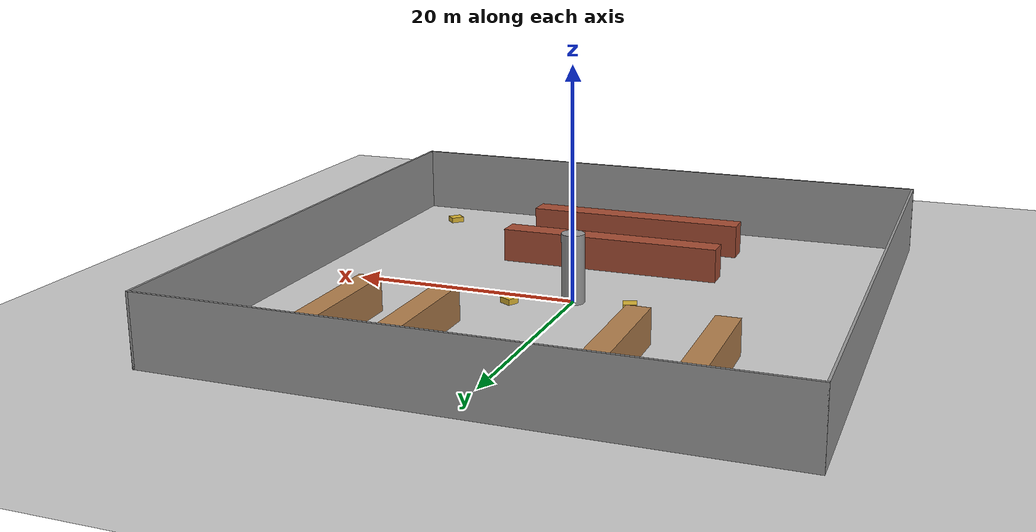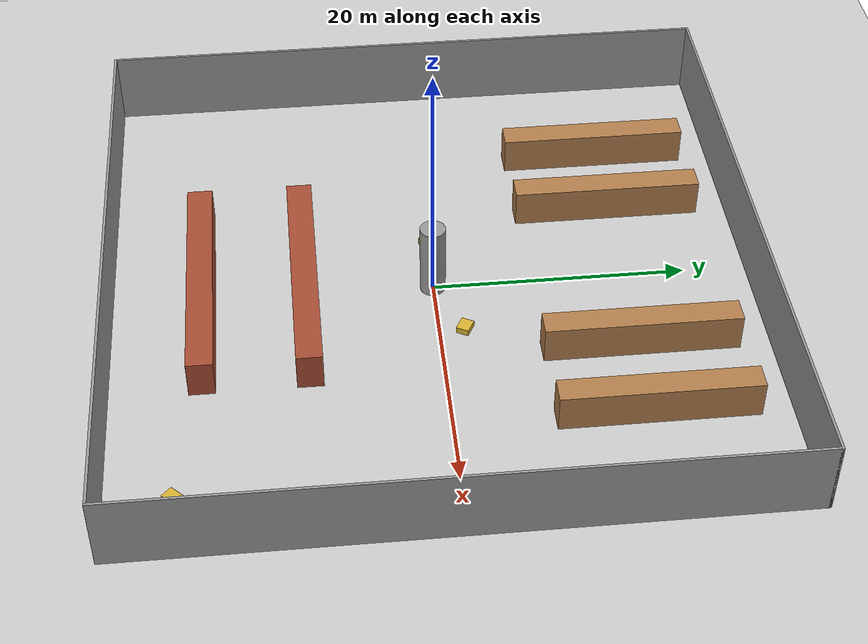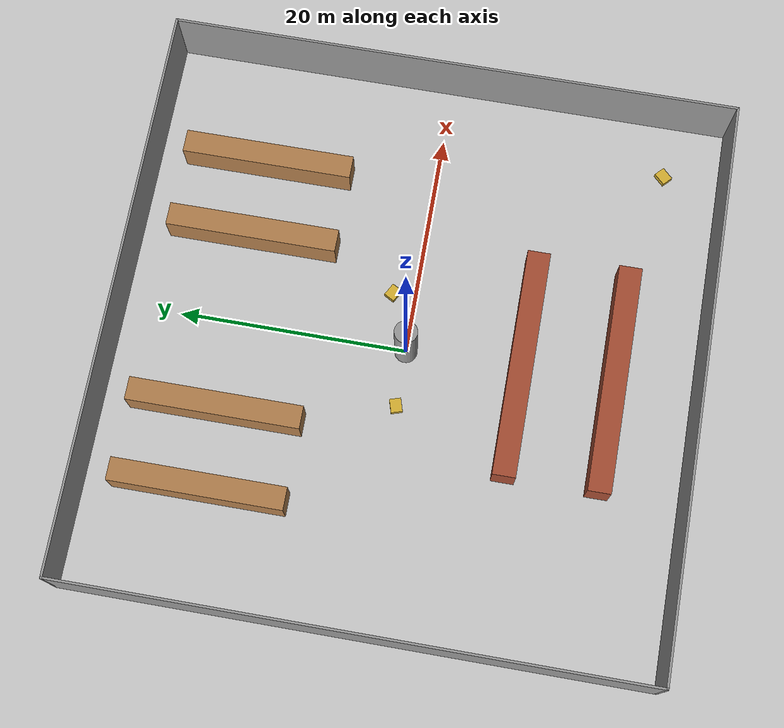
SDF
<?xml version="1.0" ?>
<sdf version="1.6">
  <world name="warehouse_large">
    <include>
      <uri>model://sun</uri>
    </include>
    <include>
      <uri>model://ground_plane</uri>
    </include>

    <!-- Floor (Optional visual enhancement, using ground_plane is standard) -->

    <!-- Outer Walls (50m x 50m) -->
    <!-- North Wall -->
    <model name='wall_north'>
      <pose>0 25 3 0 0 0</pose>
      <static>true</static>
      <link name='link'>
        <collision name='collision'>
          <geometry><box><size>50.2 0.2 6</size></box></geometry>
        </collision>
        <visual name='visual'>
          <geometry><box><size>50.2 0.2 6</size></box></geometry>
          <material><script><uri>file://media/materials/scripts/gazebo.material</uri><name>Gazebo/Grey</name></script></material>
        </visual>
      </link>
    </model>

    <!-- South Wall -->
    <model name='wall_south'>
      <pose>0 -25 3 0 0 0</pose>
      <static>true</static>
      <link name='link'>
        <collision name='collision'>
          <geometry><box><size>50.2 0.2 6</size></box></geometry>
        </collision>
        <visual name='visual'>
          <geometry><box><size>50.2 0.2 6</size></box></geometry>
          <material><script><uri>file://media/materials/scripts/gazebo.material</uri><name>Gazebo/Grey</name></script></material>
        </visual>
      </link>
    </model>

    <!-- East Wall -->
    <model name='wall_east'>
      <pose>25 0 3 0 0 0</pose>
      <static>true</static>
      <link name='link'>
        <collision name='collision'>
          <geometry><box><size>0.2 50.2 6</size></box></geometry>
        </collision>
        <visual name='visual'>
          <geometry><box><size>0.2 50.2 6</size></box></geometry>
          <material><script><uri>file://media/materials/scripts/gazebo.material</uri><name>Gazebo/Grey</name></script></material>
        </visual>
      </link>
    </model>

    <!-- West Wall -->
    <model name='wall_west'>
      <pose>-25 0 3 0 0 0</pose>
      <static>true</static>
      <link name='link'>
        <collision name='collision'>
          <geometry><box><size>0.2 50.2 6</size></box></geometry>
        </collision>
        <visual name='visual'>
          <geometry><box><size>0.2 50.2 6</size></box></geometry>
          <material><script><uri>file://media/materials/scripts/gazebo.material</uri><name>Gazebo/Grey</name></script></material>
        </visual>
      </link>
    </model>

    <!-- SHELVING ZONES -->
    <!-- Zone A (Top Left) -->
    <model name='shelf_A1'>
      <pose>-15 15 1.5 0 0 0</pose>
      <static>true</static>
      <link name='link'>
        <collision name='collision'><geometry><box><size>2 15 3</size></box></geometry></collision>
        <visual name='visual'>
            <geometry><box><size>2 15 3</size></box></geometry>
            <material><script><uri>file://media/materials/scripts/gazebo.material</uri><name>Gazebo/Wood</name></script></material>
        </visual>
      </link>
    </model>
    <model name='shelf_A2'>
      <pose>-8 15 1.5 0 0 0</pose>
      <static>true</static>
      <link name='link'>
        <collision name='collision'><geometry><box><size>2 15 3</size></box></geometry></collision>
        <visual name='visual'>
            <geometry><box><size>2 15 3</size></box></geometry>
            <material><script><uri>file://media/materials/scripts/gazebo.material</uri><name>Gazebo/Wood</name></script></material>
        </visual>
      </link>
    </model>

    <!-- Zone B (Top Right) -->
    <model name='shelf_B1'>
      <pose>8 15 1.5 0 0 0</pose>
      <static>true</static>
      <link name='link'>
        <collision name='collision'><geometry><box><size>2 15 3</size></box></geometry></collision>
        <visual name='visual'>
            <geometry><box><size>2 15 3</size></box></geometry>
            <material><script><uri>file://media/materials/scripts/gazebo.material</uri><name>Gazebo/Wood</name></script></material>
        </visual>
      </link>
    </model>
    <model name='shelf_B2'>
      <pose>15 15 1.5 0 0 0</pose>
      <static>true</static>
      <link name='link'>
        <collision name='collision'><geometry><box><size>2 15 3</size></box></geometry></collision>
        <visual name='visual'>
            <geometry><box><size>2 15 3</size></box></geometry>
            <material><script><uri>file://media/materials/scripts/gazebo.material</uri><name>Gazebo/Wood</name></script></material>
        </visual>
      </link>
    </model>

    <!-- Zone C (Bottom Center - Horizontal Layout) -->
    <model name='shelf_C1'>
      <pose>0 -10 1.5 0 0 1.57</pose>
      <static>true</static>
      <link name='link'>
        <collision name='collision'><geometry><box><size>2 20 3</size></box></geometry></collision>
        <visual name='visual'>
            <geometry><box><size>2 20 3</size></box></geometry>
            <material><script><uri>file://media/materials/scripts/gazebo.material</uri><name>Gazebo/Bricks</name></script></material>
        </visual>
      </link>
    </model>
    <model name='shelf_C2'>
      <pose>0 -18 1.5 0 0 1.57</pose>
      <static>true</static>
      <link name='link'>
        <collision name='collision'><geometry><box><size>2 20 3</size></box></geometry></collision>
        <visual name='visual'>
            <geometry><box><size>2 20 3</size></box></geometry>
            <material><script><uri>file://media/materials/scripts/gazebo.material</uri><name>Gazebo/Bricks</name></script></material>
        </visual>
      </link>
    </model>

    <!-- Central Pillar -->
    <model name='pillar_center'>
      <pose>0 0 3 0 0 0</pose>
      <static>true</static>
      <link name='link'>
        <collision name='collision'><geometry><cylinder><radius>1</radius><length>6</length></cylinder></geometry></collision>
        <visual name='visual'>
            <geometry><cylinder><radius>1</radius><length>6</length></cylinder></geometry>
            <material><script><uri>file://media/materials/scripts/gazebo.material</uri><name>Gazebo/Grey</name></script></material>
        </visual>
      </link>
    </model>

    <!-- Scattered Pallets -->
    <model name='pallet_1'>
      <pose>-5 0 0.25 0 0 0.3</pose>
      <static>true</static>
      <link name='link'>
        <collision name='collision'><geometry><box><size>1.2 1 0.5</size></box></geometry></collision>
        <visual name='visual'>
            <geometry><box><size>1.2 1 0.5</size></box></geometry>
            <material><script><uri>file://media/materials/scripts/gazebo.material</uri><name>Gazebo/Gold</name></script></material>
        </visual>
      </link>
    </model>
    <model name='pallet_2'>
      <pose>5 2 0.25 0 0 -0.5</pose>
      <static>true</static>
      <link name='link'>
        <collision name='collision'><geometry><box><size>1.2 1 0.5</size></box></geometry></collision>
        <visual name='visual'>
            <geometry><box><size>1.2 1 0.5</size></box></geometry>
            <material><script><uri>file://media/materials/scripts/gazebo.material</uri><name>Gazebo/Gold</name></script></material>
        </visual>
      </link>
    </model>
     <model name='pallet_3'>
      <pose>20 -20 0.25 0 0 0.8</pose>
      <static>true</static>
      <link name='link'>
        <collision name='collision'><geometry><box><size>1.2 1 0.5</size></box></geometry></collision>
        <visual name='visual'>
            <geometry><box><size>1.2 1 0.5</size></box></geometry>
            <material><script><uri>file://media/materials/scripts/gazebo.material</uri><name>Gazebo/Gold</name></script></material>
        </visual>
      </link>
    </model>

  </world>
</sdf>
